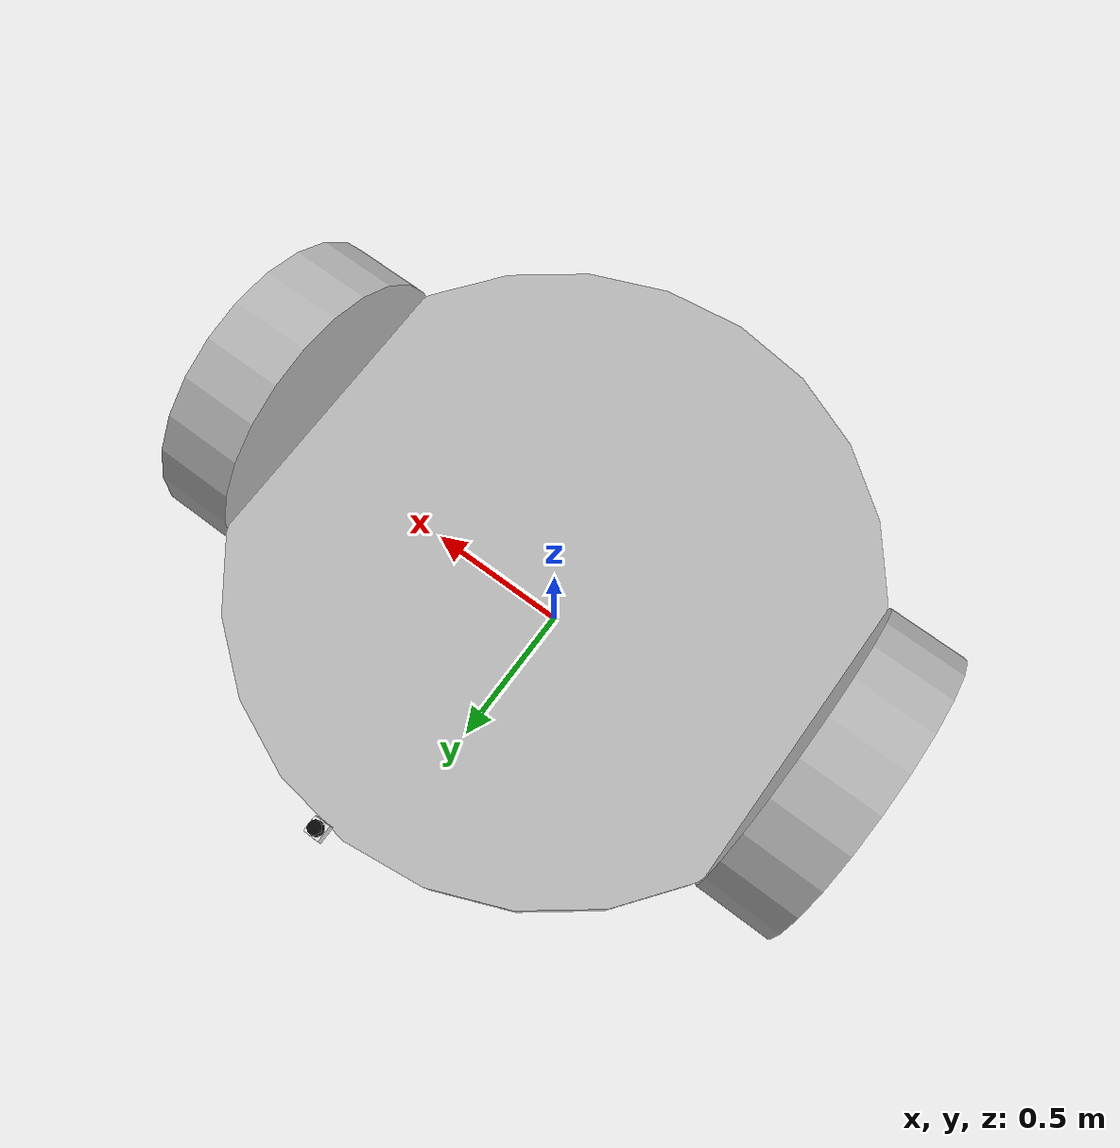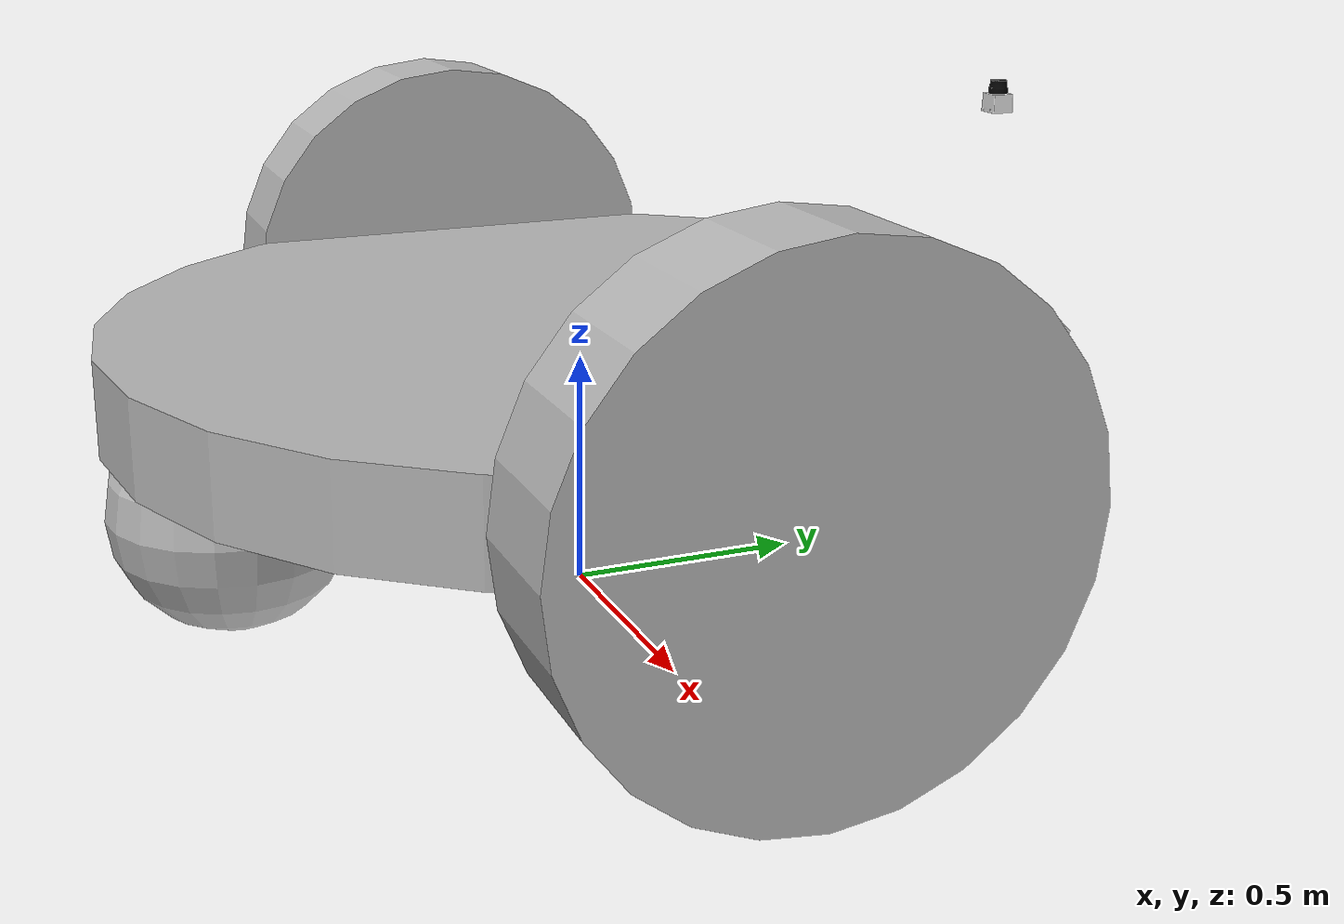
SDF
<?xml version = "1.0"?>

<sdf version='1.4'>

	<model name="yellow_robot">

		<static>false</static>

		<link name="base_link">

			<pose> 0 0 .5 0 0 0 </pose>
			<inertial>
				<mass>20</mass>
			</inertial>

			<collision name="collision">
				<geometry>
					<cylinder>
						<radius>1</radius>
						<length>0.2</length>
					</cylinder>
				</geometry>
			</collision>

			<visual name="visual">
				<geometry>
                    <cylinder>
                        <radius>1</radius>
                        <length>0.2</length>
                    </cylinder>
                </geometry>
			</visual>

			<collision name="caster_collision_1">
				<pose> 0 -.75 -.23 0 0 0 </pose>
				<geometry>
					<sphere>
						<radius>.25</radius>
					</sphere>
				</geometry>
				<surface>
              		<friction>
                		<ode>
                  			<mu>0</mu>
                  			<mu2>0</mu2>
                  			<slip1>1.0</slip1>
                  			<slip2>1.0</slip2>
                		</ode>
              		</friction>
            	</surface>
			</collision>

			<visual name="caster_visual_1">
				<pose> 0 .75 -.23 0 0 0 </pose>
				<geometry>
                    <sphere>
                        <radius>.25</radius>
                	</sphere>
				</geometry>
			</visual>

			<collision name="caster_collision_2">
                <pose> 0 .75 -.23 0 0 0 </pose>
				<geometry>
                    <sphere>
                        <radius>.25</radius>
                	</sphere>
				</geometry>
				<surface>
                    <friction>
                        <ode>
                            <mu>0</mu>
                            <mu2>0</mu2>
                            <slip1>1.0</slip1>
                            <slip2>1.0</slip2>
                        </ode>
                    </friction>
                </surface>
            </collision>

			<visual name="caster_visual_2">
                <pose> 0 -.75 -.23 0 0 0 </pose>
				<geometry>
                    <sphere>
                        <radius>.25</radius>
                	</sphere>
				</geometry>
            </visual>
		</link>

		<link name="left_wheel">

			<pose> -1 0 .5 0 1.57 0 </pose>

			<collision name="collision">
                <geometry>
                    <cylinder>
                        <radius>0.5</radius>
                        <length>0.25</length>
                    </cylinder>
                </geometry>
            </collision>

			<visual name="visual">
                <geometry>
                    <cylinder>
                        <radius>0.5</radius>
                        <length>0.25</length>
                    </cylinder>
                </geometry>
            </visual>
		</link>

		<link name="right_wheel">

            <pose> 1 0 .5 0 1.57 0 </pose>

            <collision name="collision">
                <geometry>
                    <cylinder>
                        <radius>0.5</radius>
                        <length>0.25</length>
                    </cylinder>
                </geometry>
            </collision>

            <visual name="visual">
                <geometry>
                    <cylinder>
                        <radius>0.5</radius>
                        <length>0.25</length>
                    </cylinder>
                </geometry>
            </visual>
        </link>

		<joint type="revolute" name="left_wheel_hinge">
			<pose>0 0 0 0 0 0 </pose>
			<child>left_wheel</child>
			<parent>base_link</parent>
			<axis>
				<xyz> 1 0 0 </xyz>
			</axis>
		</joint>

		<joint type="revolute" name="right_wheel_hinge">
            <pose>0 0 0 0 0 0 </pose>
            <child>right_wheel</child>
            <parent>base_link</parent>
            <axis>
                <xyz> 1 0 0 </xyz>
            </axis>
        </joint>

    <joint name="hokuyo_joint" type="fixed">
      <child>hokuyo_link</child>
      <parent>base_link</parent>
    </joint>

	<link name="hokuyo_link">
		<pose>0 1 1 0 0 0</pose>
		<inertial>
			<mass>0.1</mass>
		</inertial>

		<visual name="visual">
		<geometry>
        	  <mesh>
            	<uri>model://hokuyo/meshes/hokuyo.dae</uri>
          	</mesh>
        	</geometry>
     	 </visual>

	<sensor name="head_hokuyo_sensor" type="ray">
        <pose>0 0 0 0 0 0</pose>
        <ray>
          <scan>
            <horizontal>
              <samples>640</samples>
              <resolution>1</resolution>
              <min_angle>-3.14159</min_angle>
              <max_angle>3.14159</max_angle>
            </horizontal>
          </scan>
          <range>
            <min>0.08</min>
            <max>10</max>
            <resolution>0.01</resolution>
          </range>
        </ray>

        <plugin name="laser" filename="libRayPlugin.so" />
    		<always_on>1</always_on>
        	<update_rate>30</update_rate>
			<visualize>true</visualize>

		<plugin name="gazebo_ros_head_hokuyo_controller" filename="libgazebo_ros_laser.so">
			<topicName>scan</topicName>
			<frameName>yellow_robot/hokuyo_link</frameName>
		</plugin>
	</sensor>

    </link>

	<plugin name="differential_drive_controller" filename="libgazebo_ros_diff_drive_test.so">

		<legacyMode>false</legacyMode>
		<tf_prefix></tf_prefix>
		<robotNamespace></robotNamespace>
		<alwaysOn>true</alwaysOn>
		<updateRate>30</updateRate>
		<leftJoint>left_wheel_hinge</leftJoint>
		<rightJoint>right_wheel_hinge</rightJoint>
		<wheelSeparation>2</wheelSeparation>
		<wheelDiameter>1</wheelDiameter>
		<wheelTorque>5</wheelTorque>
		<commandTopic>cmd_vel</commandTopic>
		<odometryTopic>odom</odometryTopic>
		<odometryFrame>odom</odometryFrame>
		<robotBaseFrame>base_link</robotBaseFrame>
	</plugin>
	</model>
</sdf>
